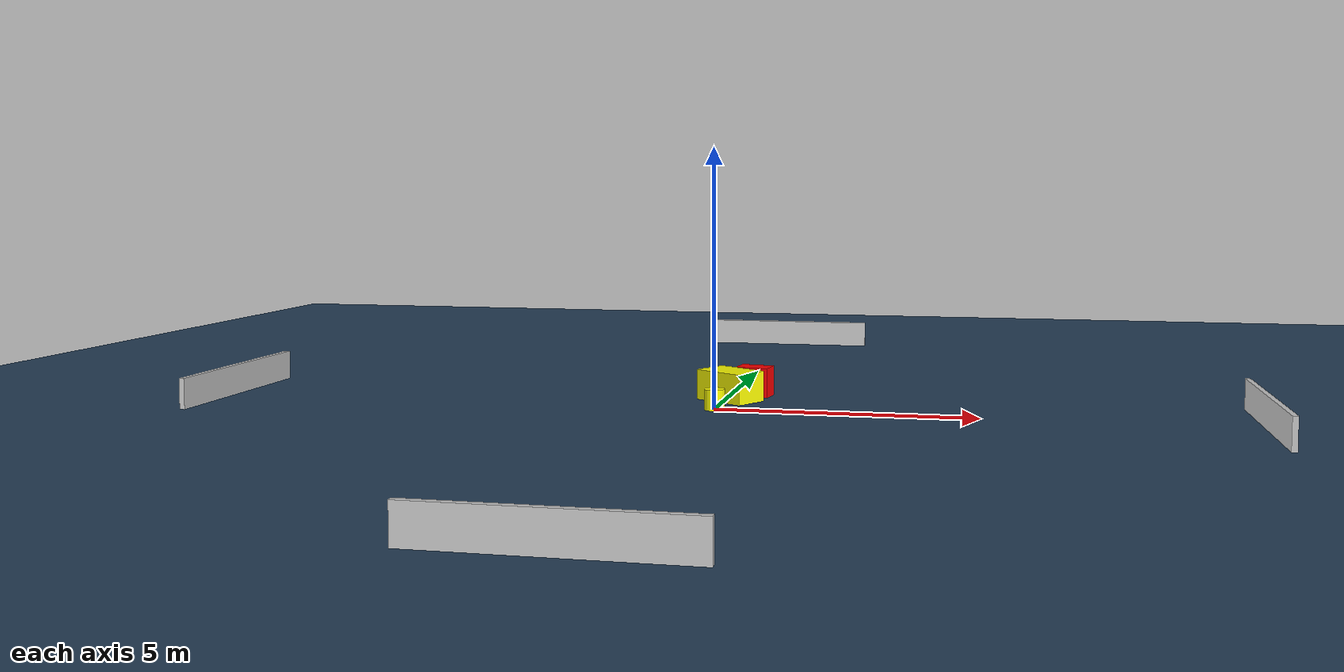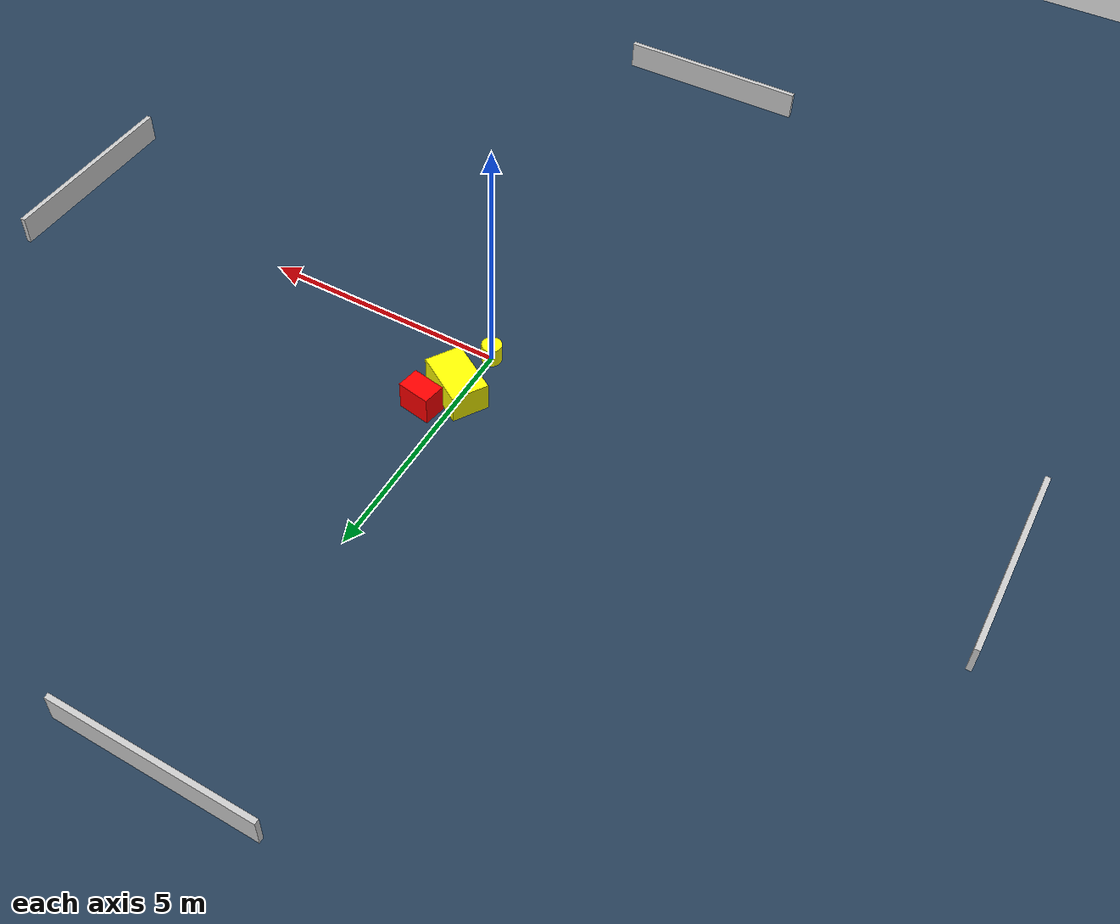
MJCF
<?xml version="1.0" ?>
<mujoco model="generated_environment">
  <option timestep="0.01" integrator="RK4" cone="elliptic"/>
  <default>
    <geom density="1"/>
  </default>
  <asset>
    <texture builtin="gradient" height="3072" name="skybox" rgb1="0.3 0.5 0.7" rgb2="0 0 0" type="skybox" width="512"/>
    <texture builtin="checker" height="300" name="groundplane" rgb1="0.2 0.3 0.4" rgb2="0.1 0.2 0.3" type="2d" width="300"/>
    <material name="groundplane" reflectance="0.2" texrepeat="5 5" texture="groundplane"/>
  </asset>
  <worldbody>
    <light dir="0 0 -1" directional="true" pos="0 0 1.5"/>
    <geom condim="3" friction="0.5 0.005 0.001" material="groundplane" name="floor" pos="0 0 0" size="0 0 0.05" type="plane"/>
    <body name="walls">
      <geom name="wall_1" condim="4" pos="-10.0 0.0 0.3" rgba="0.800000011920929 0.800000011920929 0.800000011920929 1.0" size="0.05 2.0 0.3" type="box"/>
      <geom name="wall_2" condim="4" pos="10.0 0.0 0.3" rgba="0.800000011920929 0.800000011920929 0.800000011920929 1.0" size="0.05 2.0 0.3" type="box"/>
      <geom name="wall_3" condim="4" pos="0.0 -10.0 0.3" rgba="0.800000011920929 0.800000011920929 0.800000011920929 1.0" size="2.0 0.05 0.3" type="box"/>
      <geom name="wall_4" condim="4" pos="0.0 10.0 0.3" rgba="0.800000011920929 0.800000011920929 0.800000011920929 1.0" size="2.0 0.05 0.3" type="box"/>
    </body>
    <body name="robot">
      <joint name="joint_x" type="slide" pos="0 0 0" axis="1 0 0"/>
      <joint name="joint_y" type="slide" pos="0 0 0" axis="0 1 0"/>
      <geom name="robot" type="cylinder" pos="0.0 0.0 0.2" size="0.2 0.2 0.0" mass="5.0" friction="1.0 0.005 0.0001" condim="4" rgba="1.0 1.0 0.0 1.0"/>
    </body>
    <body name="obstacle_1_movable">
      <geom name="obstacle_1_movable" condim="4" pos="0.10199657629764466 1.1104239548688286 0.3" euler="0 0 328.1619237274788" friction="0.0 0.005 0.001" rgba="1.0 1.0 0.0 1.0" size="0.5661420312035204 0.3675048405332282 0.3" type="box" mass="0.1"/>
      <joint type="free"/>
    </body>
    <body name="obstacle_2_static">
      <geom name="obstacle_2_static" condim="4" pos="0.49155434233902306 1.7258817244778504 0.3" euler="0 0 349.9387826135772" friction="0.0 0.005 0.001" rgba="1.0 0.0 0.0 1.0" size="0.3319511632710237 0.22630854707407633 0.3" type="box"/>
    </body>
  </worldbody>
  <actuator>
    <motor name="actuator_x" joint="joint_x" gear="1" ctrlrange="-1 1"/>
    <motor name="actuator_y" joint="joint_y" gear="1" ctrlrange="-1 1"/>
  </actuator>
</mujoco>
